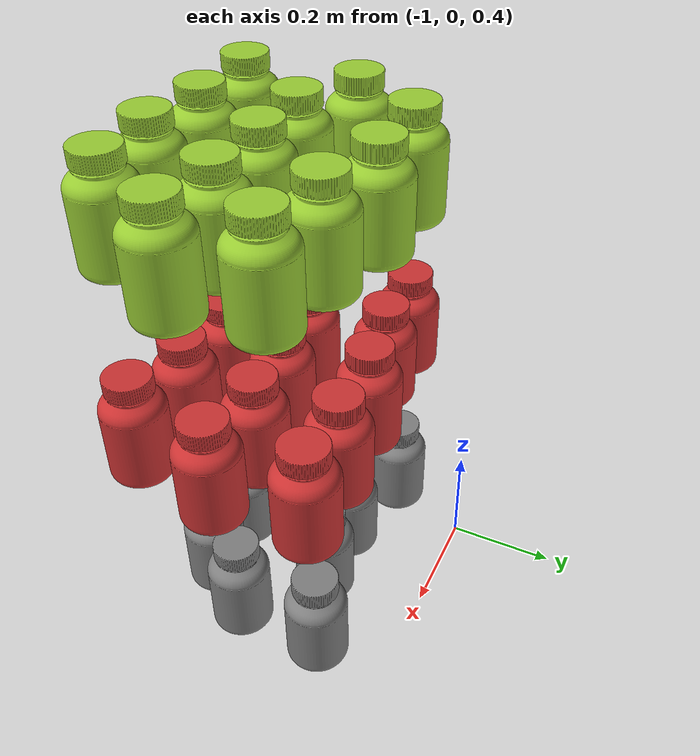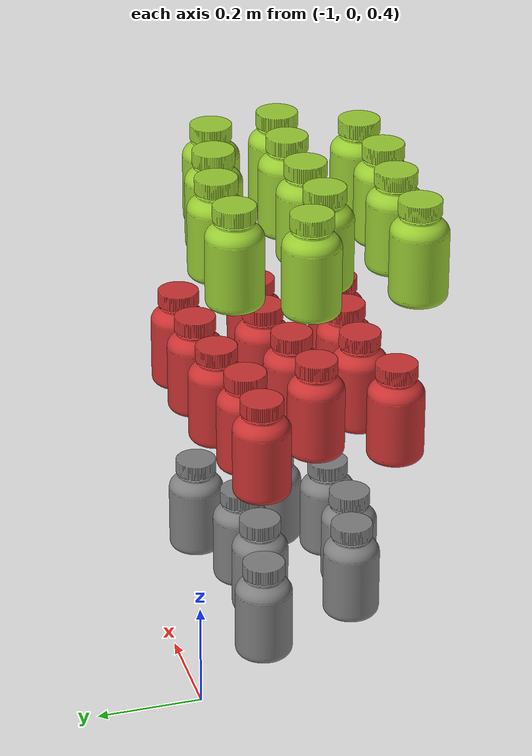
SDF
<sdf version="1.7">
 <world name="default">
  <model name="Medicine_Bottle_clone_clone_1">
   <static>0</static>
   <link name="medicine_bottle_link">
    <inertial>
     <mass>0.05</mass>
     <inertia><ixx>1e-05</ixx><ixy>0</ixy><ixz>0</ixz><iyy>1e-05</iyy><iyz>0</iyz><izz>1e-05</izz></inertia>
    </inertial>
    <visual name="visual">
     <geometry>
      <mesh><uri>model://Medicine_Bottle/meshes/Medicine_Bottle.stl</uri><scale>0.1 0.1 0.1</scale></mesh>
     </geometry>
     <material>
      <ambient>0.5 0.5 0.5 1</ambient>
      <diffuse>0.5 0.5 0.5 1</diffuse>
      <specular>0.1 0.1 0.1 1</specular>
     </material>
    </visual>
    <collision name="collision">
     <geometry>
      <mesh><uri>model://Medicine_Bottle/meshes/Medicine_Bottle.stl</uri><scale>0.1 0.1 0.1</scale></mesh>
     </geometry>
    </collision>
   </link>
   <pose>-0.566814 -0.106112 0.474988 -0.00016 -0.000412 -3.11289</pose>
  </model>
  <model name="Medicine_Bottle_clone_clone_2">
   <static>0</static>
   <link name="medicine_bottle_link">
    <inertial>
     <mass>0.05</mass>
     <inertia><ixx>1e-05</ixx><ixy>0</ixy><ixz>0</ixz><iyy>1e-05</iyy><iyz>0</iyz><izz>1e-05</izz></inertia>
    </inertial>
    <visual name="visual">
     <geometry>
      <mesh><uri>model://Medicine_Bottle/meshes/Medicine_Bottle.stl</uri><scale>0.1 0.1 0.1</scale></mesh>
     </geometry>
     <material>
      <ambient>0.5 0.5 0.5 1</ambient>
      <diffuse>0.5 0.5 0.5 1</diffuse>
      <specular>0.1 0.1 0.1 1</specular>
     </material>
    </visual>
    <collision name="collision">
     <geometry>
      <mesh><uri>model://Medicine_Bottle/meshes/Medicine_Bottle.stl</uri><scale>0.1 0.1 0.1</scale></mesh>
     </geometry>
    </collision>
   </link>
   <pose>-0.704865 -0.159406 0.474988 -0.00016 -0.000412 -3.11308</pose>
  </model>
  <model name="Medicine_Bottle_clone_clone_2_clone_3">
   <static>0</static>
   <link name="medicine_bottle_link">
    <inertial>
     <mass>0.05</mass>
     <inertia><ixx>1e-05</ixx><ixy>0</ixy><ixz>0</ixz><iyy>1e-05</iyy><iyz>0</iyz><izz>1e-05</izz></inertia>
    </inertial>
    <visual name="visual">
     <geometry>
      <mesh><uri>model://Medicine_Bottle/meshes/Medicine_Bottle.stl</uri><scale>0.1 0.1 0.1</scale></mesh>
     </geometry>
     <material>
      <ambient>0.5 0.5 0.5 1</ambient>
      <diffuse>0.5 0.5 0.5 1</diffuse>
      <specular>0.1 0.1 0.1 1</specular>
     </material>
    </visual>
    <collision name="collision">
     <geometry>
      <mesh><uri>model://Medicine_Bottle/meshes/Medicine_Bottle.stl</uri><scale>0.1 0.1 0.1</scale></mesh>
     </geometry>
    </collision>
   </link>
   <pose>-0.577068 -0.263632 0.474988 -0.00016 -0.000412 3.0867</pose>
  </model>
  <model name="Medicine_Bottle_clone_clone_2_clone_4">
   <static>0</static>
   <link name="medicine_bottle_link">
    <inertial>
     <mass>0.05</mass>
     <inertia><ixx>1e-05</ixx><ixy>0</ixy><ixz>0</ixz><iyy>1e-05</iyy><iyz>0</iyz><izz>1e-05</izz></inertia>
    </inertial>
    <visual name="visual">
     <geometry>
      <mesh><uri>model://Medicine_Bottle/meshes/Medicine_Bottle.stl</uri><scale>0.1 0.1 0.1</scale></mesh>
     </geometry>
     <material>
      <ambient>0.5 0.5 0.5 1</ambient>
      <diffuse>0.5 0.5 0.5 1</diffuse>
      <specular>0.1 0.1 0.1 1</specular>
     </material>
    </visual>
    <collision name="collision">
     <geometry>
      <mesh><uri>model://Medicine_Bottle/meshes/Medicine_Bottle.stl</uri><scale>0.1 0.1 0.1</scale></mesh>
     </geometry>
    </collision>
   </link>
   <pose>-0.769506 -0.360302 0.474988 -0.00016 -0.000412 -3.11247</pose>
  </model>
  <model name="Medicine_Bottle_clone_clone_2_clone_5">
   <static>0</static>
   <link name="medicine_bottle_link">
    <inertial>
     <mass>0.05</mass>
     <inertia><ixx>1e-05</ixx><ixy>0</ixy><ixz>0</ixz><iyy>1e-05</iyy><iyz>0</iyz><izz>1e-05</izz></inertia>
    </inertial>
    <visual name="visual">
     <geometry>
      <mesh><uri>model://Medicine_Bottle/meshes/Medicine_Bottle.stl</uri><scale>0.1 0.1 0.1</scale></mesh>
     </geometry>
     <material>
      <ambient>0.5 0.5 0.5 1</ambient>
      <diffuse>0.5 0.5 0.5 1</diffuse>
      <specular>0.1 0.1 0.1 1</specular>
     </material>
    </visual>
    <collision name="collision">
     <geometry>
      <mesh><uri>model://Medicine_Bottle/meshes/Medicine_Bottle.stl</uri><scale>0.1 0.1 0.1</scale></mesh>
     </geometry>
    </collision>
   </link>
   <pose>-0.642489 -0.355211 0.474978 -0.00016 -0.000412 -3.07593</pose>
  </model>
  <model name="Medicine_Bottle_0_clone_1_clone">
   <static>0</static>
   <link name="medicine_bottle_link">
    <inertial>
     <mass>0.05</mass>
     <inertia><ixx>1e-05</ixx><ixy>0</ixy><ixz>0</ixz><iyy>1e-05</iyy><iyz>0</iyz><izz>1e-05</izz></inertia>
    </inertial>
    <visual name="visual">
     <geometry>
      <mesh><uri>model://Medicine_Bottle/meshes/Medicine_Bottle.stl</uri><scale>0.1 0.1 0.1</scale></mesh>
     </geometry>
     <material>
      <ambient>0.4 0.1 0.1 1</ambient>
      <diffuse>0.8 0.2 0.2 1</diffuse>
      <specular>0.2 0.1 0.1 1</specular>
     </material>
    </visual>
    <collision name="collision">
     <geometry>
      <mesh><uri>model://Medicine_Bottle/meshes/Medicine_Bottle.stl</uri><scale>0.1 0.1 0.1</scale></mesh>
     </geometry>
    </collision>
   </link>
   <pose>-0.518437 -0.087516 0.824988 -0.00016 -0.000412 -0.000384</pose>
  </model>
  <model name="Medicine_Bottle_0_clone_1_clone_0">
   <static>0</static>
   <link name="medicine_bottle_link">
    <inertial>
     <mass>0.05</mass>
     <inertia><ixx>1e-05</ixx><ixy>0</ixy><ixz>0</ixz><iyy>1e-05</iyy><iyz>0</iyz><izz>1e-05</izz></inertia>
    </inertial>
    <visual name="visual">
     <geometry>
      <mesh><uri>model://Medicine_Bottle/meshes/Medicine_Bottle.stl</uri><scale>0.1 0.1 0.1</scale></mesh>
     </geometry>
     <material>
      <ambient>0.4 0.1 0.1 1</ambient>
      <diffuse>0.8 0.2 0.2 1</diffuse>
      <specular>0.2 0.1 0.1 1</specular>
     </material>
    </visual>
    <collision name="collision">
     <geometry>
      <mesh><uri>model://Medicine_Bottle/meshes/Medicine_Bottle.stl</uri><scale>0.1 0.1 0.1</scale></mesh>
     </geometry>
    </collision>
   </link>
   <pose>-0.634953 -0.090202 0.824988 -0.00016 -0.000412 -0.000384</pose>
  </model>
  <model name="Medicine_Bottle_0_clone_1_clone_1">
   <static>0</static>
   <link name="medicine_bottle_link">
    <inertial>
     <mass>0.05</mass>
     <inertia><ixx>1e-05</ixx><ixy>0</ixy><ixz>0</ixz><iyy>1e-05</iyy><iyz>0</iyz><izz>1e-05</izz></inertia>
    </inertial>
    <visual name="visual">
     <geometry>
      <mesh><uri>model://Medicine_Bottle/meshes/Medicine_Bottle.stl</uri><scale>0.1 0.1 0.1</scale></mesh>
     </geometry>
     <material>
      <ambient>0.4 0.1 0.1 1</ambient>
      <diffuse>0.8 0.2 0.2 1</diffuse>
      <specular>0.2 0.1 0.1 1</specular>
     </material>
    </visual>
    <collision name="collision">
     <geometry>
      <mesh><uri>model://Medicine_Bottle/meshes/Medicine_Bottle.stl</uri><scale>0.1 0.1 0.1</scale></mesh>
     </geometry>
    </collision>
   </link>
   <pose>-0.763671 -0.097504 0.824988 -0.00016 -0.000412 -0.087052</pose>
  </model>
  <model name="Medicine_Bottle_0_clone_1_clone_2">
   <static>0</static>
   <link name="medicine_bottle_link">
    <inertial>
     <mass>0.05</mass>
     <inertia><ixx>1e-05</ixx><ixy>0</ixy><ixz>0</ixz><iyy>1e-05</iyy><iyz>0</iyz><izz>1e-05</izz></inertia>
    </inertial>
    <visual name="visual">
     <geometry>
      <mesh><uri>model://Medicine_Bottle/meshes/Medicine_Bottle.stl</uri><scale>0.1 0.1 0.1</scale></mesh>
     </geometry>
     <material>
      <ambient>0.4 0.1 0.1 1</ambient>
      <diffuse>0.8 0.2 0.2 1</diffuse>
      <specular>0.2 0.1 0.1 1</specular>
     </material>
    </visual>
    <collision name="collision">
     <geometry>
      <mesh><uri>model://Medicine_Bottle/meshes/Medicine_Bottle.stl</uri><scale>0.1 0.1 0.1</scale></mesh>
     </geometry>
    </collision>
   </link>
   <pose>-0.880724 -0.120645 0.824978 2.8e-05 -0.000838 -0.419503</pose>
  </model>
  <model name="Medicine_Bottle_0_clone_1_clone_3">
   <static>0</static>
   <link name="medicine_bottle_link">
    <inertial>
     <mass>0.05</mass>
     <inertia><ixx>1e-05</ixx><ixy>0</ixy><ixz>0</ixz><iyy>1e-05</iyy><iyz>0</iyz><izz>1e-05</izz></inertia>
    </inertial>
    <visual name="visual">
     <geometry>
      <mesh><uri>model://Medicine_Bottle/meshes/Medicine_Bottle.stl</uri><scale>0.1 0.1 0.1</scale></mesh>
     </geometry>
     <material>
      <ambient>0.4 0.1 0.1 1</ambient>
      <diffuse>0.8 0.2 0.2 1</diffuse>
      <specular>0.2 0.1 0.1 1</specular>
     </material>
    </visual>
    <collision name="collision">
     <geometry>
      <mesh><uri>model://Medicine_Bottle/meshes/Medicine_Bottle.stl</uri><scale>0.1 0.1 0.1</scale></mesh>
     </geometry>
    </collision>
   </link>
   <pose>-0.506089 -0.243709 0.824988 -0.00016 -0.000412 -0.000384</pose>
  </model>
  <model name="Medicine_Bottle_0_clone_1_clone_4">
   <static>0</static>
   <link name="medicine_bottle_link">
    <inertial>
     <mass>0.05</mass>
     <inertia><ixx>1e-05</ixx><ixy>0</ixy><ixz>0</ixz><iyy>1e-05</iyy><iyz>0</iyz><izz>1e-05</izz></inertia>
    </inertial>
    <visual name="visual">
     <geometry>
      <mesh><uri>model://Medicine_Bottle/meshes/Medicine_Bottle.stl</uri><scale>0.1 0.1 0.1</scale></mesh>
     </geometry>
     <material>
      <ambient>0.4 0.1 0.1 1</ambient>
      <diffuse>0.8 0.2 0.2 1</diffuse>
      <specular>0.2 0.1 0.1 1</specular>
     </material>
    </visual>
    <collision name="collision">
     <geometry>
      <mesh><uri>model://Medicine_Bottle/meshes/Medicine_Bottle.stl</uri><scale>0.1 0.1 0.1</scale></mesh>
     </geometry>
    </collision>
   </link>
   <pose>-0.620644 -0.227937 0.824988 -0.00016 -0.000412 -0.000384</pose>
  </model>
  <model name="Medicine_Bottle_0_clone_1_clone_5">
   <static>0</static>
   <link name="medicine_bottle_link">
    <inertial>
     <mass>0.05</mass>
     <inertia><ixx>1e-05</ixx><ixy>0</ixy><ixz>0</ixz><iyy>1e-05</iyy><iyz>0</iyz><izz>1e-05</izz></inertia>
    </inertial>
    <visual name="visual">
     <geometry>
      <mesh><uri>model://Medicine_Bottle/meshes/Medicine_Bottle.stl</uri><scale>0.1 0.1 0.1</scale></mesh>
     </geometry>
     <material>
      <ambient>0.4 0.1 0.1 1</ambient>
      <diffuse>0.8 0.2 0.2 1</diffuse>
      <specular>0.2 0.1 0.1 1</specular>
     </material>
    </visual>
    <collision name="collision">
     <geometry>
      <mesh><uri>model://Medicine_Bottle/meshes/Medicine_Bottle.stl</uri><scale>0.1 0.1 0.1</scale></mesh>
     </geometry>
    </collision>
   </link>
   <pose>-0.747807 -0.248275 0.824978 -0.00016 -0.000412 -0.000384</pose>
  </model>
  <model name="Medicine_Bottle_0_clone_1_clone_6">
   <static>0</static>
   <link name="medicine_bottle_link">
    <inertial>
     <mass>0.05</mass>
     <inertia><ixx>1e-05</ixx><ixy>0</ixy><ixz>0</ixz><iyy>1e-05</iyy><iyz>0</iyz><izz>1e-05</izz></inertia>
    </inertial>
    <visual name="visual">
     <geometry>
      <mesh><uri>model://Medicine_Bottle/meshes/Medicine_Bottle.stl</uri><scale>0.1 0.1 0.1</scale></mesh>
     </geometry>
     <material>
      <ambient>0.4 0.1 0.1 1</ambient>
      <diffuse>0.8 0.2 0.2 1</diffuse>
      <specular>0.2 0.1 0.1 1</specular>
     </material>
    </visual>
    <collision name="collision">
     <geometry>
      <mesh><uri>model://Medicine_Bottle/meshes/Medicine_Bottle.stl</uri><scale>0.1 0.1 0.1</scale></mesh>
     </geometry>
    </collision>
   </link>
   <pose>-0.867987 -0.260686 0.824978 -0.00016 -0.000412 -0.001904</pose>
  </model>
  <model name="Medicine_Bottle_0_clone_1_clone_7">
   <static>0</static>
   <link name="medicine_bottle_link">
    <inertial>
     <mass>0.05</mass>
     <inertia><ixx>1e-05</ixx><ixy>0</ixy><ixz>0</ixz><iyy>1e-05</iyy><iyz>0</iyz><izz>1e-05</izz></inertia>
    </inertial>
    <visual name="visual">
     <geometry>
      <mesh><uri>model://Medicine_Bottle/meshes/Medicine_Bottle.stl</uri><scale>0.1 0.1 0.1</scale></mesh>
     </geometry>
     <material>
      <ambient>0.4 0.1 0.1 1</ambient>
      <diffuse>0.8 0.2 0.2 1</diffuse>
      <specular>0.2 0.1 0.1 1</specular>
     </material>
    </visual>
    <collision name="collision">
     <geometry>
      <mesh><uri>model://Medicine_Bottle/meshes/Medicine_Bottle.stl</uri><scale>0.1 0.1 0.1</scale></mesh>
     </geometry>
    </collision>
   </link>
   <pose>-0.542762 -0.40053 0.824978 -0.00016 -0.000412 -0.000384</pose>
  </model>
  <model name="Medicine_Bottle_0_clone_1_clone_8">
   <static>0</static>
   <link name="medicine_bottle_link">
    <inertial>
     <mass>0.05</mass>
     <inertia><ixx>1e-05</ixx><ixy>0</ixy><ixz>0</ixz><iyy>1e-05</iyy><iyz>0</iyz><izz>1e-05</izz></inertia>
    </inertial>
    <visual name="visual">
     <geometry>
      <mesh><uri>model://Medicine_Bottle/meshes/Medicine_Bottle.stl</uri><scale>0.1 0.1 0.1</scale></mesh>
     </geometry>
     <material>
      <ambient>0.4 0.1 0.1 1</ambient>
      <diffuse>0.8 0.2 0.2 1</diffuse>
      <specular>0.2 0.1 0.1 1</specular>
     </material>
    </visual>
    <collision name="collision">
     <geometry>
      <mesh><uri>model://Medicine_Bottle/meshes/Medicine_Bottle.stl</uri><scale>0.1 0.1 0.1</scale></mesh>
     </geometry>
    </collision>
   </link>
   <pose>-0.659609 -0.380321 0.824988 -0.00016 -0.000412 -0.000384</pose>
  </model>
  <model name="Medicine_Bottle_0_clone_1_clone_9">
   <static>0</static>
   <link name="medicine_bottle_link">
    <inertial>
     <mass>0.05</mass>
     <inertia><ixx>1e-05</ixx><ixy>0</ixy><ixz>0</ixz><iyy>1e-05</iyy><iyz>0</iyz><izz>1e-05</izz></inertia>
    </inertial>
    <visual name="visual">
     <geometry>
      <mesh><uri>model://Medicine_Bottle/meshes/Medicine_Bottle.stl</uri><scale>0.1 0.1 0.1</scale></mesh>
     </geometry>
     <material>
      <ambient>0.4 0.1 0.1 1</ambient>
      <diffuse>0.8 0.2 0.2 1</diffuse>
      <specular>0.2 0.1 0.1 1</specular>
     </material>
    </visual>
    <collision name="collision">
     <geometry>
      <mesh><uri>model://Medicine_Bottle/meshes/Medicine_Bottle.stl</uri><scale>0.1 0.1 0.1</scale></mesh>
     </geometry>
    </collision>
   </link>
   <pose>-0.783116 -0.371841 0.824978 -0.00016 -0.000412 -0.000384</pose>
  </model>
  <model name="Medicine_Bottle_0_clone_1_clone_10">
   <static>0</static>
   <link name="medicine_bottle_link">
    <inertial>
     <mass>0.05</mass>
     <inertia><ixx>1e-05</ixx><ixy>0</ixy><ixz>0</ixz><iyy>1e-05</iyy><iyz>0</iyz><izz>1e-05</izz></inertia>
    </inertial>
    <visual name="visual">
     <geometry>
      <mesh><uri>model://Medicine_Bottle/meshes/Medicine_Bottle.stl</uri><scale>0.1 0.1 0.1</scale></mesh>
     </geometry>
     <material>
      <ambient>0.4 0.1 0.1 1</ambient>
      <diffuse>0.8 0.2 0.2 1</diffuse>
      <specular>0.2 0.1 0.1 1</specular>
     </material>
    </visual>
    <collision name="collision">
     <geometry>
      <mesh><uri>model://Medicine_Bottle/meshes/Medicine_Bottle.stl</uri><scale>0.1 0.1 0.1</scale></mesh>
     </geometry>
    </collision>
   </link>
   <pose>-0.98893 -0.121222 0.824978 -0.000104 -0.001118 -0.070038</pose>
  </model>
  <model name="Medicine_Bottle_0_clone_1_clone_11">
   <static>0</static>
   <link name="medicine_bottle_link">
    <inertial>
     <mass>0.05</mass>
     <inertia><ixx>1e-05</ixx><ixy>0</ixy><ixz>0</ixz><iyy>1e-05</iyy><iyz>0</iyz><izz>1e-05</izz></inertia>
    </inertial>
    <visual name="visual">
     <geometry>
      <mesh><uri>model://Medicine_Bottle/meshes/Medicine_Bottle.stl</uri><scale>0.1 0.1 0.1</scale></mesh>
     </geometry>
     <material>
      <ambient>0.4 0.1 0.1 1</ambient>
      <diffuse>0.8 0.2 0.2 1</diffuse>
      <specular>0.2 0.1 0.1 1</specular>
     </material>
    </visual>
    <collision name="collision">
     <geometry>
      <mesh><uri>model://Medicine_Bottle/meshes/Medicine_Bottle.stl</uri><scale>0.1 0.1 0.1</scale></mesh>
     </geometry>
    </collision>
   </link>
   <pose>-0.92353 -0.398308 0.824988 -0.00016 -0.000412 -0.000384</pose>
  </model>
  <model name="Medicine_Bottle_clone_clone_2_clone_4_clone">
   <static>0</static>
   <link name="medicine_bottle_link">
    <inertial>
     <mass>0.05</mass>
     <inertia><ixx>1e-05</ixx><ixy>0</ixy><ixz>0</ixz><iyy>1e-05</iyy><iyz>0</iyz><izz>1e-05</izz></inertia>
    </inertial>
    <visual name="visual">
     <geometry>
      <mesh><uri>model://Medicine_Bottle/meshes/Medicine_Bottle.stl</uri><scale>0.1 0.1 0.1</scale></mesh>
     </geometry>
     <material>
      <ambient>0.5 0.5 0.5 1</ambient>
      <diffuse>0.5 0.5 0.5 1</diffuse>
      <specular>0.1 0.1 0.1 1</specular>
     </material>
    </visual>
    <collision name="collision">
     <geometry>
      <mesh><uri>model://Medicine_Bottle/meshes/Medicine_Bottle.stl</uri><scale>0.1 0.1 0.1</scale></mesh>
     </geometry>
    </collision>
   </link>
   <pose>-0.823953 -0.164495 0.474988 -0.00016 -0.000412 -3.11247</pose>
  </model>
  <model name="Medicine_Bottle_clone_clone_2_clone_4_clone_0">
   <static>0</static>
   <link name="medicine_bottle_link">
    <inertial>
     <mass>0.05</mass>
     <inertia><ixx>1e-05</ixx><ixy>0</ixy><ixz>0</ixz><iyy>1e-05</iyy><iyz>0</iyz><izz>1e-05</izz></inertia>
    </inertial>
    <visual name="visual">
     <geometry>
      <mesh><uri>model://Medicine_Bottle/meshes/Medicine_Bottle.stl</uri><scale>0.1 0.1 0.1</scale></mesh>
     </geometry>
     <material>
      <ambient>0.5 0.5 0.5 1</ambient>
      <diffuse>0.5 0.5 0.5 1</diffuse>
      <specular>0.1 0.1 0.1 1</specular>
     </material>
    </visual>
    <collision name="collision">
     <geometry>
      <mesh><uri>model://Medicine_Bottle/meshes/Medicine_Bottle.stl</uri><scale>0.1 0.1 0.1</scale></mesh>
     </geometry>
    </collision>
   </link>
   <pose>-0.887375 -0.328098 0.474988 -0.00016 -0.000412 -3.11247</pose>
  </model>
  <model name="Medicine_Bottle_clone_clone_2_clone_4_clone_1">
   <static>0</static>
   <link name="medicine_bottle_link">
    <inertial>
     <mass>0.05</mass>
     <inertia><ixx>1e-05</ixx><ixy>0</ixy><ixz>0</ixz><iyy>1e-05</iyy><iyz>0</iyz><izz>1e-05</izz></inertia>
    </inertial>
    <visual name="visual">
     <geometry>
      <mesh><uri>model://Medicine_Bottle/meshes/Medicine_Bottle.stl</uri><scale>0.1 0.1 0.1</scale></mesh>
     </geometry>
     <material>
      <ambient>0.5 0.5 0.5 1</ambient>
      <diffuse>0.5 0.5 0.5 1</diffuse>
      <specular>0.1 0.1 0.1 1</specular>
     </material>
    </visual>
    <collision name="collision">
     <geometry>
      <mesh><uri>model://Medicine_Bottle/meshes/Medicine_Bottle.stl</uri><scale>0.1 0.1 0.1</scale></mesh>
     </geometry>
    </collision>
   </link>
   <pose>-0.978651 -0.127924 0.474988 -0.00016 -0.000412 -3.11247</pose>
  </model>
  <model name="Medicine_Bottle_1_clone_2">
   <static>0</static>
   <link name="medicine_bottle_link">
    <inertial>
     <mass>0.05</mass>
     <inertia><ixx>1e-05</ixx><ixy>0</ixy><ixz>0</ixz><iyy>1e-05</iyy><iyz>0</iyz><izz>1e-05</izz></inertia>
    </inertial>
    <visual name="visual">
     <geometry>
      <mesh><uri>model://Medicine_Bottle/meshes/Medicine_Bottle.stl</uri><scale>0.1 0.1 0.1</scale></mesh>
     </geometry>
     <material>
      <ambient>0.3 0.4 0.1 1</ambient>
      <diffuse>0.6 0.8 0.2 1</diffuse>
      <specular>0.2 0.3 0.1 1</specular>
     </material>
    </visual>
    <collision name="collision">
     <geometry>
      <mesh><uri>model://Medicine_Bottle/meshes/Medicine_Bottle.stl</uri><scale>0.1 0.1 0.1</scale></mesh>
     </geometry>
    </collision>
   </link>
   <pose>-0.544074 -0.148586 1.17499 -0.000162 -0.000417 0.10145</pose>
  </model>
  <model name="Medicine_Bottle_1_clone_3">
   <static>0</static>
   <link name="medicine_bottle_link">
    <inertial>
     <mass>0.05</mass>
     <inertia><ixx>1e-05</ixx><ixy>0</ixy><ixz>0</ixz><iyy>1e-05</iyy><iyz>0</iyz><izz>1e-05</izz></inertia>
    </inertial>
    <visual name="visual">
     <geometry>
      <mesh><uri>model://Medicine_Bottle/meshes/Medicine_Bottle.stl</uri><scale>0.1 0.1 0.1</scale></mesh>
     </geometry>
     <material>
      <ambient>0.3 0.4 0.1 1</ambient>
      <diffuse>0.6 0.8 0.2 1</diffuse>
      <specular>0.2 0.3 0.1 1</specular>
     </material>
    </visual>
    <collision name="collision">
     <geometry>
      <mesh><uri>model://Medicine_Bottle/meshes/Medicine_Bottle.stl</uri><scale>0.1 0.1 0.1</scale></mesh>
     </geometry>
    </collision>
   </link>
   <pose>-0.661161 -0.122299 1.17499 -0.000161 -0.000413 0.10145</pose>
  </model>
  <model name="Medicine_Bottle_1_clone_4">
   <static>0</static>
   <link name="medicine_bottle_link">
    <inertial>
     <mass>0.05</mass>
     <inertia><ixx>1e-05</ixx><ixy>0</ixy><ixz>0</ixz><iyy>1e-05</iyy><iyz>0</iyz><izz>1e-05</izz></inertia>
    </inertial>
    <visual name="visual">
     <geometry>
      <mesh><uri>model://Medicine_Bottle/meshes/Medicine_Bottle.stl</uri><scale>0.1 0.1 0.1</scale></mesh>
     </geometry>
     <material>
      <ambient>0.3 0.4 0.1 1</ambient>
      <diffuse>0.6 0.8 0.2 1</diffuse>
      <specular>0.2 0.3 0.1 1</specular>
     </material>
    </visual>
    <collision name="collision">
     <geometry>
      <mesh><uri>model://Medicine_Bottle/meshes/Medicine_Bottle.stl</uri><scale>0.1 0.1 0.1</scale></mesh>
     </geometry>
    </collision>
   </link>
   <pose>-0.782915 -0.094554 1.17499 -0.000159 -0.000408 0.10145</pose>
  </model>
  <model name="Medicine_Bottle_1_clone_5">
   <static>0</static>
   <link name="medicine_bottle_link">
    <inertial>
     <mass>0.05</mass>
     <inertia><ixx>1e-05</ixx><ixy>0</ixy><ixz>0</ixz><iyy>1e-05</iyy><iyz>0</iyz><izz>1e-05</izz></inertia>
    </inertial>
    <visual name="visual">
     <geometry>
      <mesh><uri>model://Medicine_Bottle/meshes/Medicine_Bottle.stl</uri><scale>0.1 0.1 0.1</scale></mesh>
     </geometry>
     <material>
      <ambient>0.3 0.4 0.1 1</ambient>
      <diffuse>0.6 0.8 0.2 1</diffuse>
      <specular>0.2 0.3 0.1 1</specular>
     </material>
    </visual>
    <collision name="collision">
     <geometry>
      <mesh><uri>model://Medicine_Bottle/meshes/Medicine_Bottle.stl</uri><scale>0.1 0.1 0.1</scale></mesh>
     </geometry>
    </collision>
   </link>
   <pose>-0.909218 -0.093926 1.17499 -0.000163 -0.000418 0.10145</pose>
  </model>
  <model name="Medicine_Bottle_1_clone_10">
   <static>0</static>
   <link name="medicine_bottle_link">
    <inertial>
     <mass>0.05</mass>
     <inertia><ixx>1e-05</ixx><ixy>0</ixy><ixz>0</ixz><iyy>1e-05</iyy><iyz>0</iyz><izz>1e-05</izz></inertia>
    </inertial>
    <visual name="visual">
     <geometry>
      <mesh><uri>model://Medicine_Bottle/meshes/Medicine_Bottle.stl</uri><scale>0.1 0.1 0.1</scale></mesh>
     </geometry>
     <material>
      <ambient>0.3 0.4 0.1 1</ambient>
      <diffuse>0.6 0.8 0.2 1</diffuse>
      <specular>0.2 0.3 0.1 1</specular>
     </material>
    </visual>
    <collision name="collision">
     <geometry>
      <mesh><uri>model://Medicine_Bottle/meshes/Medicine_Bottle.stl</uri><scale>0.1 0.1 0.1</scale></mesh>
     </geometry>
    </collision>
   </link>
   <pose>-0.519736 -0.284578 1.17498 -0.000159 -0.000409 0.10145</pose>
  </model>
  <model name="Medicine_Bottle_1_clone_11">
   <static>0</static>
   <link name="medicine_bottle_link">
    <inertial>
     <mass>0.05</mass>
     <inertia><ixx>1e-05</ixx><ixy>0</ixy><ixz>0</ixz><iyy>1e-05</iyy><iyz>0</iyz><izz>1e-05</izz></inertia>
    </inertial>
    <visual name="visual">
     <geometry>
      <mesh><uri>model://Medicine_Bottle/meshes/Medicine_Bottle.stl</uri><scale>0.1 0.1 0.1</scale></mesh>
     </geometry>
     <material>
      <ambient>0.3 0.4 0.1 1</ambient>
      <diffuse>0.6 0.8 0.2 1</diffuse>
      <specular>0.2 0.3 0.1 1</specular>
     </material>
    </visual>
    <collision name="collision">
     <geometry>
      <mesh><uri>model://Medicine_Bottle/meshes/Medicine_Bottle.stl</uri><scale>0.1 0.1 0.1</scale></mesh>
     </geometry>
    </collision>
   </link>
   <pose>-0.635029 -0.270607 1.17498 -0.000159 -0.000409 0.10145</pose>
  </model>
  <model name="Medicine_Bottle_1_clone_12">
   <static>0</static>
   <link name="medicine_bottle_link">
    <inertial>
     <mass>0.05</mass>
     <inertia><ixx>1e-05</ixx><ixy>0</ixy><ixz>0</ixz><iyy>1e-05</iyy><iyz>0</iyz><izz>1e-05</izz></inertia>
    </inertial>
    <visual name="visual">
     <geometry>
      <mesh><uri>model://Medicine_Bottle/meshes/Medicine_Bottle.stl</uri><scale>0.1 0.1 0.1</scale></mesh>
     </geometry>
     <material>
      <ambient>0.3 0.4 0.1 1</ambient>
      <diffuse>0.6 0.8 0.2 1</diffuse>
      <specular>0.2 0.3 0.1 1</specular>
     </material>
    </visual>
    <collision name="collision">
     <geometry>
      <mesh><uri>model://Medicine_Bottle/meshes/Medicine_Bottle.stl</uri><scale>0.1 0.1 0.1</scale></mesh>
     </geometry>
    </collision>
   </link>
   <pose>-0.758987 -0.269632 1.17499 -0.000163 -0.000419 0.10145</pose>
  </model>
  <model name="Medicine_Bottle_1_clone_13">
   <static>0</static>
   <link name="medicine_bottle_link">
    <inertial>
     <mass>0.05</mass>
     <inertia><ixx>1e-05</ixx><ixy>0</ixy><ixz>0</ixz><iyy>1e-05</iyy><iyz>0</iyz><izz>1e-05</izz></inertia>
    </inertial>
    <visual name="visual">
     <geometry>
      <mesh><uri>model://Medicine_Bottle/meshes/Medicine_Bottle.stl</uri><scale>0.1 0.1 0.1</scale></mesh>
     </geometry>
     <material>
      <ambient>0.3 0.4 0.1 1</ambient>
      <diffuse>0.6 0.8 0.2 1</diffuse>
      <specular>0.2 0.3 0.1 1</specular>
     </material>
    </visual>
    <collision name="collision">
     <geometry>
      <mesh><uri>model://Medicine_Bottle/meshes/Medicine_Bottle.stl</uri><scale>0.1 0.1 0.1</scale></mesh>
     </geometry>
    </collision>
   </link>
   <pose>-0.8766 -0.270483 1.17498 -0.000165 -0.000425 0.10145</pose>
  </model>
  <model name="Medicine_Bottle_1_clone_15">
   <static>0</static>
   <link name="medicine_bottle_link">
    <inertial>
     <mass>0.05</mass>
     <inertia><ixx>1e-05</ixx><ixy>0</ixy><ixz>0</ixz><iyy>1e-05</iyy><iyz>0</iyz><izz>1e-05</izz></inertia>
    </inertial>
    <visual name="visual">
     <geometry>
      <mesh><uri>model://Medicine_Bottle/meshes/Medicine_Bottle.stl</uri><scale>0.1 0.1 0.1</scale></mesh>
     </geometry>
     <material>
      <ambient>0.3 0.4 0.1 1</ambient>
      <diffuse>0.6 0.8 0.2 1</diffuse>
      <specular>0.2 0.3 0.1 1</specular>
     </material>
    </visual>
    <collision name="collision">
     <geometry>
      <mesh><uri>model://Medicine_Bottle/meshes/Medicine_Bottle.stl</uri><scale>0.1 0.1 0.1</scale></mesh>
     </geometry>
    </collision>
   </link>
   <pose>-0.975487 -0.417014 1.17499 -0.000165 -0.000424 0.10145</pose>
  </model>
  <model name="Medicine_Bottle_1_clone_16">
   <static>0</static>
   <link name="medicine_bottle_link">
    <inertial>
     <mass>0.05</mass>
     <inertia><ixx>1e-05</ixx><ixy>0</ixy><ixz>0</ixz><iyy>1e-05</iyy><iyz>0</iyz><izz>1e-05</izz></inertia>
    </inertial>
    <visual name="visual">
     <geometry>
      <mesh><uri>model://Medicine_Bottle/meshes/Medicine_Bottle.stl</uri><scale>0.1 0.1 0.1</scale></mesh>
     </geometry>
     <material>
      <ambient>0.3 0.4 0.1 1</ambient>
      <diffuse>0.6 0.8 0.2 1</diffuse>
      <specular>0.2 0.3 0.1 1</specular>
     </material>
    </visual>
    <collision name="collision">
     <geometry>
      <mesh><uri>model://Medicine_Bottle/meshes/Medicine_Bottle.stl</uri><scale>0.1 0.1 0.1</scale></mesh>
     </geometry>
    </collision>
   </link>
   <pose>-0.839527 -0.416523 1.17499 -0.000161 -0.000412 0.10145</pose>
  </model>
  <model name="Medicine_Bottle_1_clone_17">
   <static>0</static>
   <link name="medicine_bottle_link">
    <inertial>
     <mass>0.05</mass>
     <inertia><ixx>1e-05</ixx><ixy>0</ixy><ixz>0</ixz><iyy>1e-05</iyy><iyz>0</iyz><izz>1e-05</izz></inertia>
    </inertial>
    <visual name="visual">
     <geometry>
      <mesh><uri>model://Medicine_Bottle/meshes/Medicine_Bottle.stl</uri><scale>0.1 0.1 0.1</scale></mesh>
     </geometry>
     <material>
      <ambient>0.3 0.4 0.1 1</ambient>
      <diffuse>0.6 0.8 0.2 1</diffuse>
      <specular>0.2 0.3 0.1 1</specular>
     </material>
    </visual>
    <collision name="collision">
     <geometry>
      <mesh><uri>model://Medicine_Bottle/meshes/Medicine_Bottle.stl</uri><scale>0.1 0.1 0.1</scale></mesh>
     </geometry>
    </collision>
   </link>
   <pose>-0.718952 -0.431457 1.17499 -0.000161 -0.000415 0.10145</pose>
  </model>
  <model name="Medicine_Bottle_1_clone_18">
   <static>0</static>
   <link name="medicine_bottle_link">
    <inertial>
     <mass>0.05</mass>
     <inertia><ixx>1e-05</ixx><ixy>0</ixy><ixz>0</ixz><iyy>1e-05</iyy><iyz>0</iyz><izz>1e-05</izz></inertia>
    </inertial>
    <visual name="visual">
     <geometry>
      <mesh><uri>model://Medicine_Bottle/meshes/Medicine_Bottle.stl</uri><scale>0.1 0.1 0.1</scale></mesh>
     </geometry>
     <material>
      <ambient>0.3 0.4 0.1 1</ambient>
      <diffuse>0.6 0.8 0.2 1</diffuse>
      <specular>0.2 0.3 0.1 1</specular>
     </material>
    </visual>
    <collision name="collision">
     <geometry>
      <mesh><uri>model://Medicine_Bottle/meshes/Medicine_Bottle.stl</uri><scale>0.1 0.1 0.1</scale></mesh>
     </geometry>
    </collision>
   </link>
   <pose>-0.593945 -0.424248 1.17499 -0.000162 -0.000416 0.10145</pose>
  </model>
  <model name="Medicine_Bottle_1_clone_23">
   <static>0</static>
   <link name="medicine_bottle_link">
    <inertial>
     <mass>0.05</mass>
     <inertia><ixx>1e-05</ixx><ixy>0</ixy><ixz>0</ixz><iyy>1e-05</iyy><iyz>0</iyz><izz>1e-05</izz></inertia>
    </inertial>
    <visual name="visual">
     <geometry>
      <mesh><uri>model://Medicine_Bottle/meshes/Medicine_Bottle.stl</uri><scale>0.1 0.1 0.1</scale></mesh>
     </geometry>
     <material>
      <ambient>0.3 0.4 0.1 1</ambient>
      <diffuse>0.6 0.8 0.2 1</diffuse>
      <specular>0.2 0.3 0.1 1</specular>
     </material>
    </visual>
    <collision name="collision">
     <geometry>
      <mesh><uri>model://Medicine_Bottle/meshes/Medicine_Bottle.stl</uri><scale>0.1 0.1 0.1</scale></mesh>
     </geometry>
    </collision>
   </link>
   <pose>-0.979946 -0.215554 1.17498 -0.000163 -0.000419 0.10145</pose>
  </model>
 </world>
</sdf>
